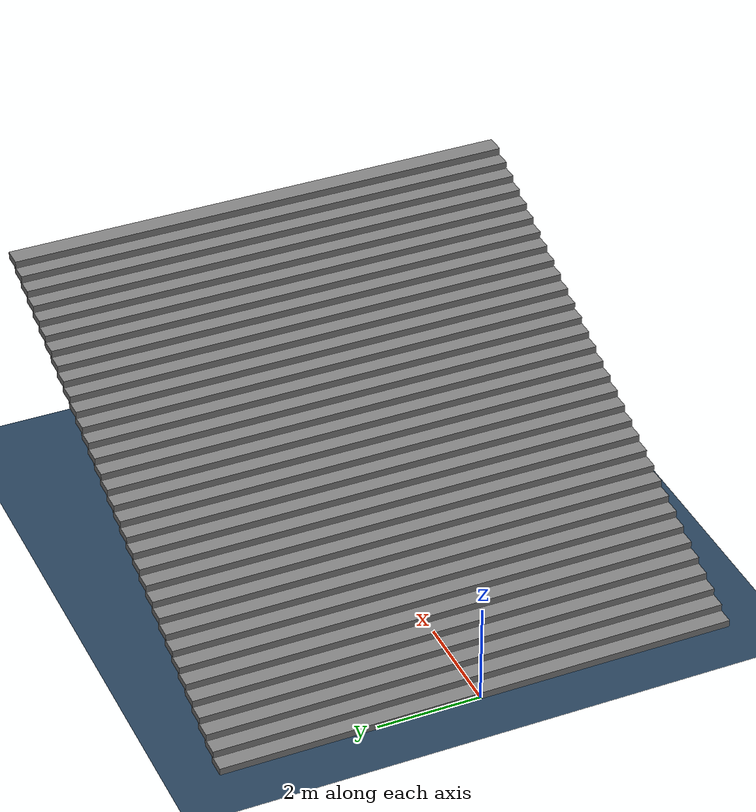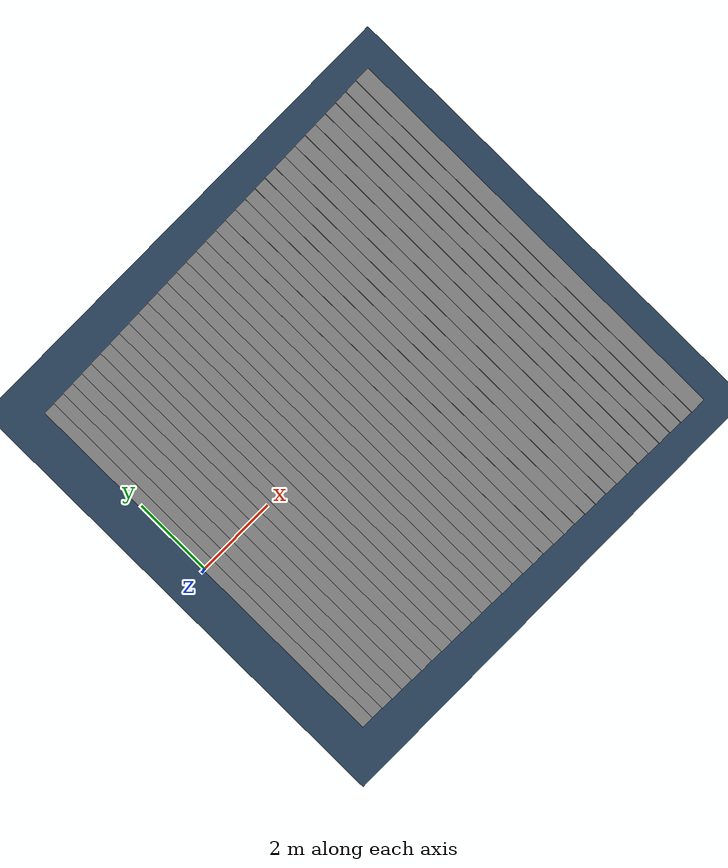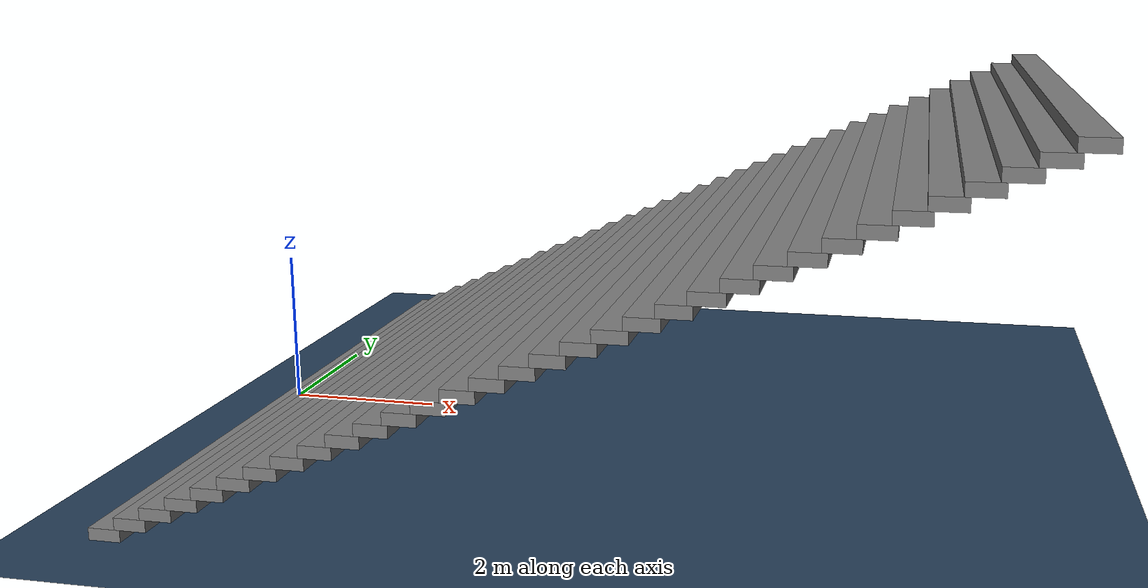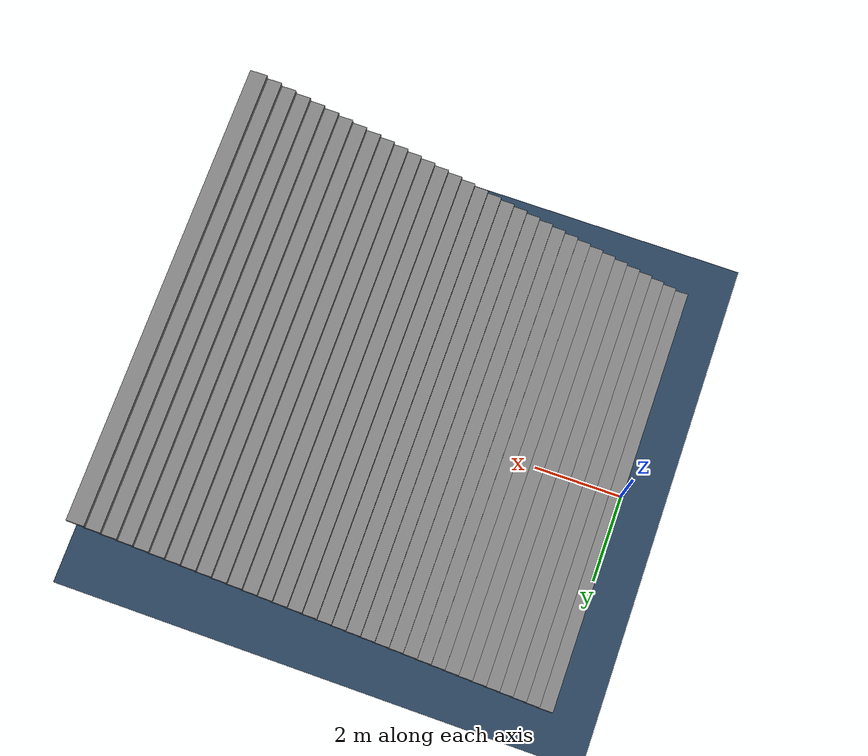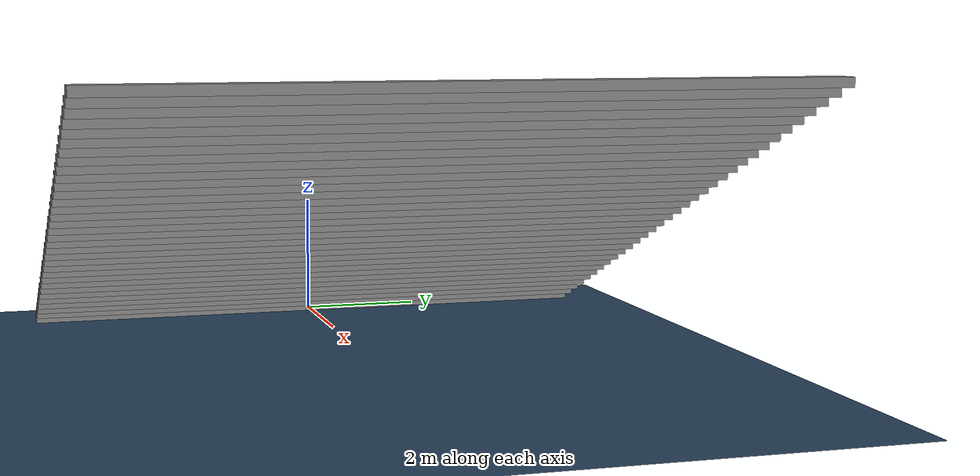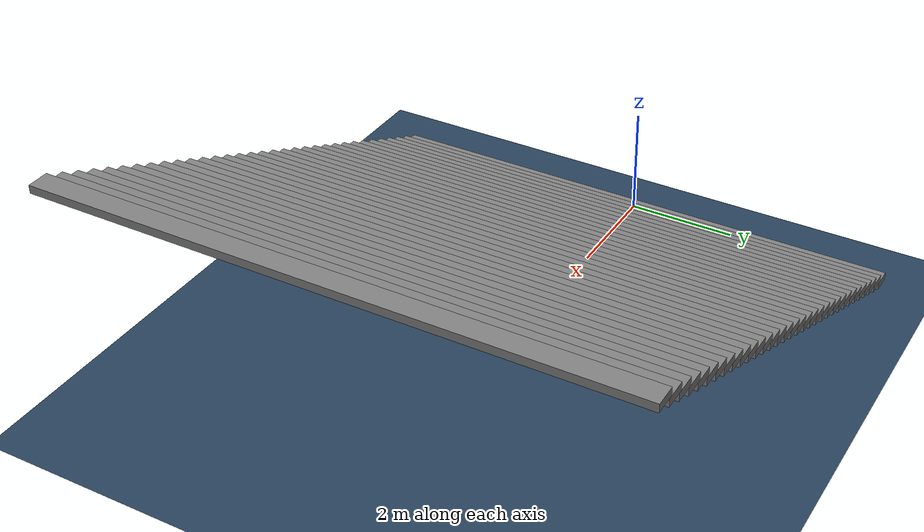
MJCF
<mujoco model="stairs_up_3">
  <!-- Terrain Type: stairs_up, Level: 3, Stairs step height: 0.1400 -->
  <statistic center="0 0 0.1" extent="0.8" />
  <visual>
    <headlight diffuse="0.6 0.6 0.6" ambient="0.3 0.3 0.3" specular="0 0 0" />
    <rgba haze="0.15 0.25 0.35 1" />
    <global azimuth="-130" elevation="-20" />
  </visual>
  <asset>
    <texture type="skybox" builtin="gradient" rgb1="0.3 0.5 0.7" rgb2="0 0 0" width="512" height="3072" />
    <texture type="2d" name="groundplane" builtin="checker" mark="edge" rgb1="0.2 0.3 0.4" rgb2="0.1 0.2 0.3" markrgb="0.8 0.8 0.8" width="300" height="300" />
    <material name="groundplane" texture="groundplane" texuniform="true" texrepeat="5 5" reflectance="0.0" />
  </asset>
  <worldbody>
    <light pos="0 0 1.5" dir="0 0 -1" directional="true" />
    <geom name="floor" size="0 0 0.05" type="plane" material="groundplane" />
    <geom pos="0.155 0.0 0.07" type="box" size="0.186 5.0 0.07" quat="1.0 0.0 0.0 0.0" />
    <geom pos="0.46499999999999997 0.0 0.21000000000000002" type="box" size="0.186 5.0 0.07" quat="1.0 0.0 0.0 0.0" />
    <geom pos="0.7749999999999999 0.0 0.35000000000000003" type="box" size="0.186 5.0 0.07" quat="1.0 0.0 0.0 0.0" />
    <geom pos="1.085 0.0 0.49000000000000005" type="box" size="0.186 5.0 0.07" quat="1.0 0.0 0.0 0.0" />
    <geom pos="1.395 0.0 0.6300000000000001" type="box" size="0.186 5.0 0.07" quat="1.0 0.0 0.0 0.0" />
    <geom pos="1.705 0.0 0.7700000000000001" type="box" size="0.186 5.0 0.07" quat="1.0 0.0 0.0 0.0" />
    <geom pos="2.015 0.0 0.9100000000000001" type="box" size="0.186 5.0 0.07" quat="1.0 0.0 0.0 0.0" />
    <geom pos="2.325 0.0 1.0500000000000003" type="box" size="0.186 5.0 0.07" quat="1.0 0.0 0.0 0.0" />
    <geom pos="2.6350000000000002 0.0 1.1900000000000004" type="box" size="0.186 5.0 0.07" quat="1.0 0.0 0.0 0.0" />
    <geom pos="2.9450000000000003 0.0 1.3300000000000005" type="box" size="0.186 5.0 0.07" quat="1.0 0.0 0.0 0.0" />
    <geom pos="3.2550000000000003 0.0 1.4700000000000006" type="box" size="0.186 5.0 0.07" quat="1.0 0.0 0.0 0.0" />
    <geom pos="3.5650000000000004 0.0 1.6100000000000008" type="box" size="0.186 5.0 0.07" quat="1.0 0.0 0.0 0.0" />
    <geom pos="3.8750000000000004 0.0 1.7500000000000009" type="box" size="0.186 5.0 0.07" quat="1.0 0.0 0.0 0.0" />
    <geom pos="4.1850000000000005 0.0 1.890000000000001" type="box" size="0.186 5.0 0.07" quat="1.0 0.0 0.0 0.0" />
    <geom pos="4.495 0.0 2.030000000000001" type="box" size="0.186 5.0 0.07" quat="1.0 0.0 0.0 0.0" />
    <geom pos="4.805 0.0 2.1700000000000013" type="box" size="0.186 5.0 0.07" quat="1.0 0.0 0.0 0.0" />
    <geom pos="5.114999999999999 0.0 2.3100000000000014" type="box" size="0.186 5.0 0.07" quat="1.0 0.0 0.0 0.0" />
    <geom pos="5.424999999999999 0.0 2.4500000000000015" type="box" size="0.186 5.0 0.07" quat="1.0 0.0 0.0 0.0" />
    <geom pos="5.7349999999999985 0.0 2.5900000000000016" type="box" size="0.186 5.0 0.07" quat="1.0 0.0 0.0 0.0" />
    <geom pos="6.044999999999998 0.0 2.7300000000000018" type="box" size="0.186 5.0 0.07" quat="1.0 0.0 0.0 0.0" />
    <geom pos="6.354999999999998 0.0 2.870000000000002" type="box" size="0.186 5.0 0.07" quat="1.0 0.0 0.0 0.0" />
    <geom pos="6.664999999999997 0.0 3.010000000000002" type="box" size="0.186 5.0 0.07" quat="1.0 0.0 0.0 0.0" />
    <geom pos="6.974999999999997 0.0 3.150000000000002" type="box" size="0.186 5.0 0.07" quat="1.0 0.0 0.0 0.0" />
    <geom pos="7.284999999999997 0.0 3.2900000000000023" type="box" size="0.186 5.0 0.07" quat="1.0 0.0 0.0 0.0" />
    <geom pos="7.594999999999996 0.0 3.4300000000000024" type="box" size="0.186 5.0 0.07" quat="1.0 0.0 0.0 0.0" />
    <geom pos="7.904999999999996 0.0 3.5700000000000025" type="box" size="0.186 5.0 0.07" quat="1.0 0.0 0.0 0.0" />
    <geom pos="8.214999999999996 0.0 3.7100000000000026" type="box" size="0.186 5.0 0.07" quat="1.0 0.0 0.0 0.0" />
    <geom pos="8.524999999999997 0.0 3.8500000000000028" type="box" size="0.186 5.0 0.07" quat="1.0 0.0 0.0 0.0" />
    <geom pos="8.834999999999997 0.0 3.990000000000003" type="box" size="0.186 5.0 0.07" quat="1.0 0.0 0.0 0.0" />
    <geom pos="9.144999999999998 0.0 4.130000000000003" type="box" size="0.186 5.0 0.07" quat="1.0 0.0 0.0 0.0" />
    <geom pos="9.454999999999998 0.0 4.270000000000002" type="box" size="0.186 5.0 0.07" quat="1.0 0.0 0.0 0.0" />
    <geom pos="9.764999999999999 0.0 4.410000000000002" type="box" size="0.186 5.0 0.07" quat="1.0 0.0 0.0 0.0" />
    <geom pos="10.075 0.0 4.550000000000002" type="box" size="0.186 5.0 0.07" quat="1.0 0.0 0.0 0.0" />
  </worldbody>
</mujoco>
